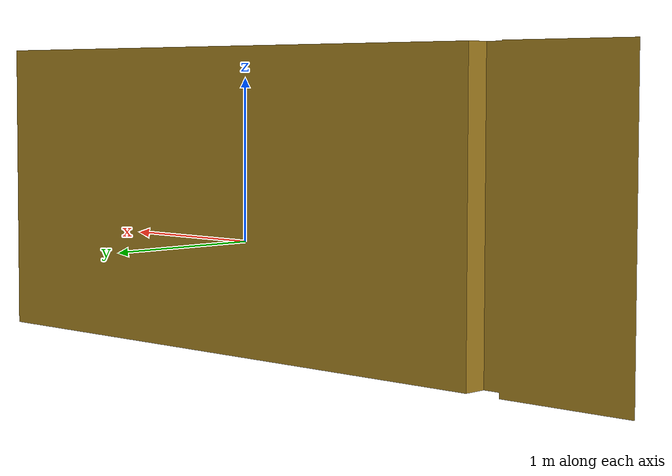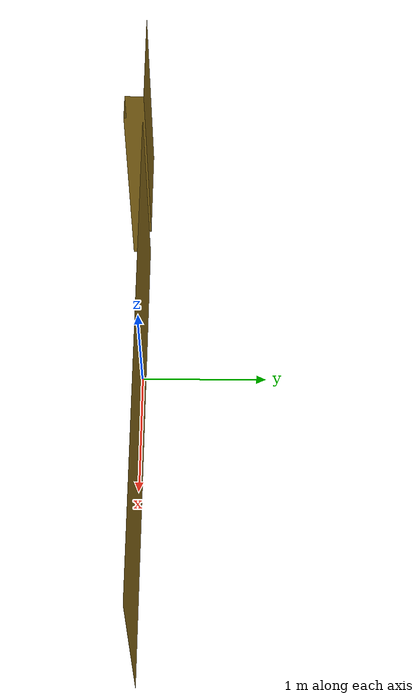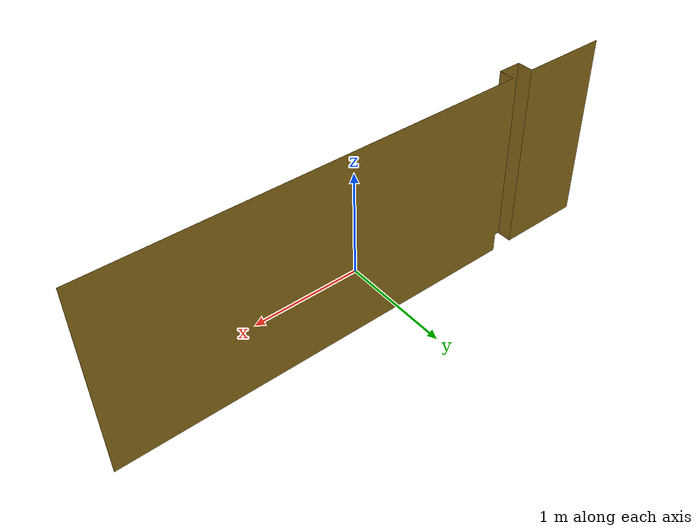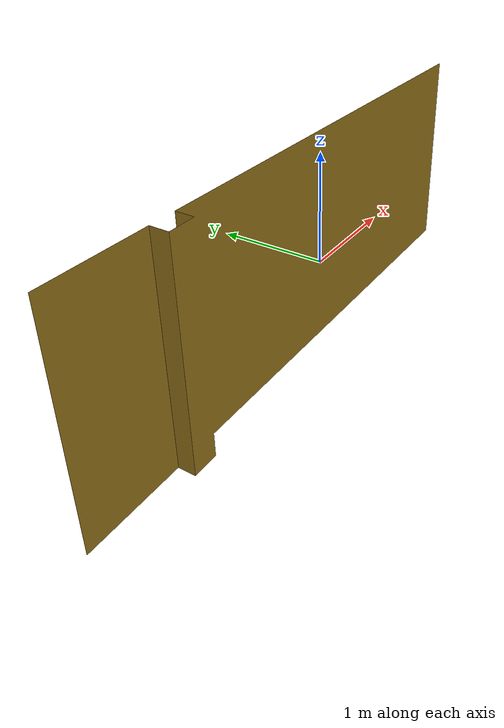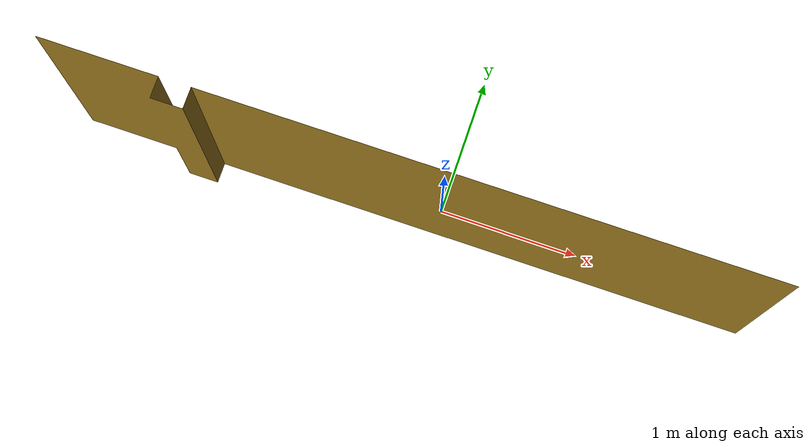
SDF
<?xml version="1.0" ?>
<sdf version="1.5">
  <model name="north_wall">
    <static>true</static>
    <link name="north_wall_link">
      <collision name="north_collision">
        <pose>-0.25 0 0.2 0 0 0</pose>
        <geometry>
          <box>
            <size>5.16 0.3 1.92</size>
          </box>
        </geometry>
        <surface>
          <friction>
            <ode>
              <mu>100</mu>
              <mu2>50</mu2>
            </ode>
          </friction>
        </surface>
      </collision>
      <visual name="north_visual">
        <cast_shadows>false</cast_shadows>
        <geometry>
            <mesh>
                <uri>model://wallNorth/meshes/wall-north.dae</uri>
            </mesh>
        </geometry>
	    <material>
          <script>
            <uri>model://wallNorth/materials/scripts</uri>
            <uri>model://wallNorth/materials/textures</uri>
            <name>wallNorthMat/Diffuse</name>
          </script>
        </material>
      </visual>
    </link>
  </model>
</sdf>
